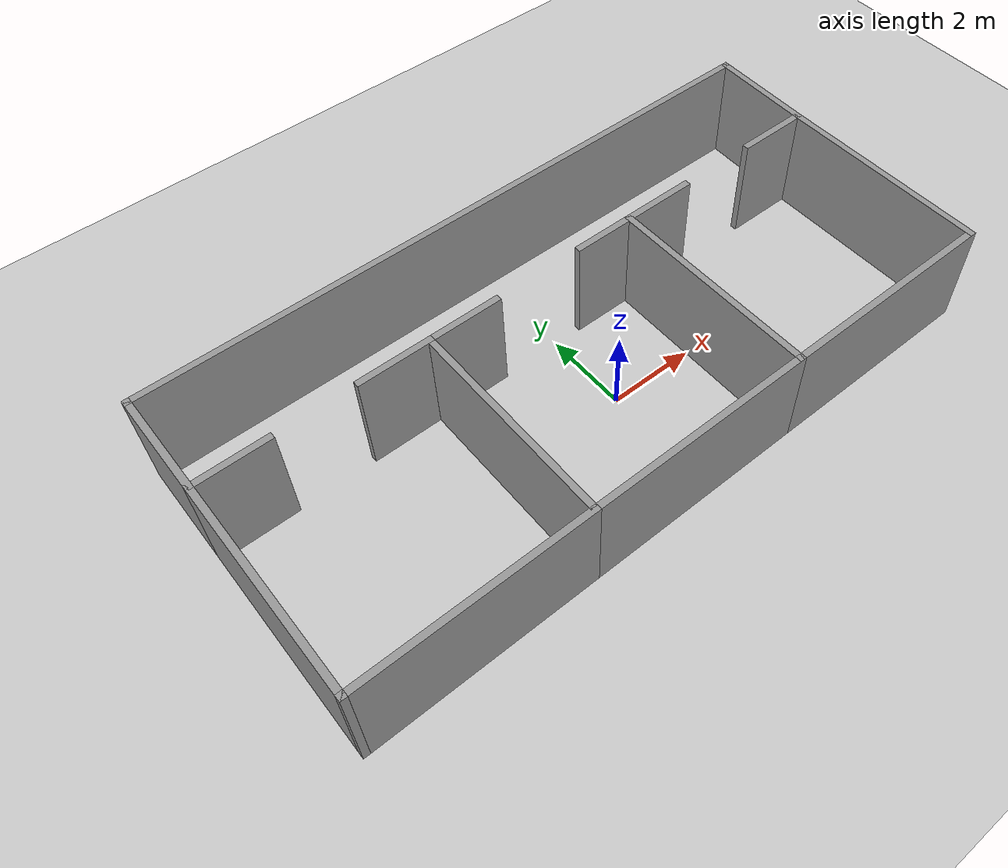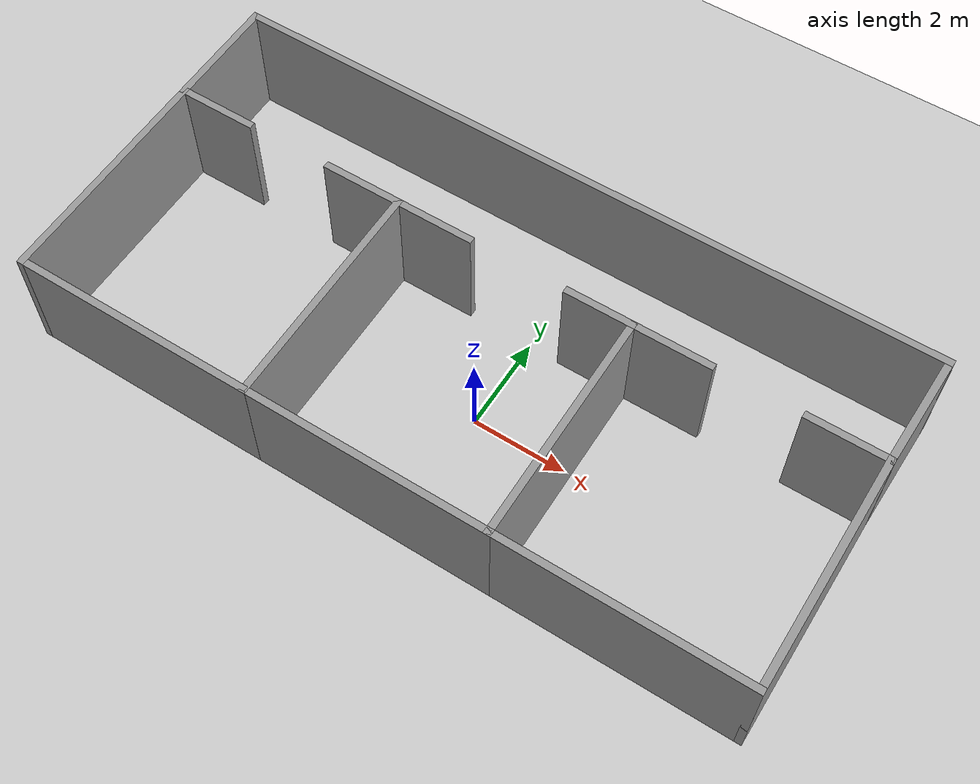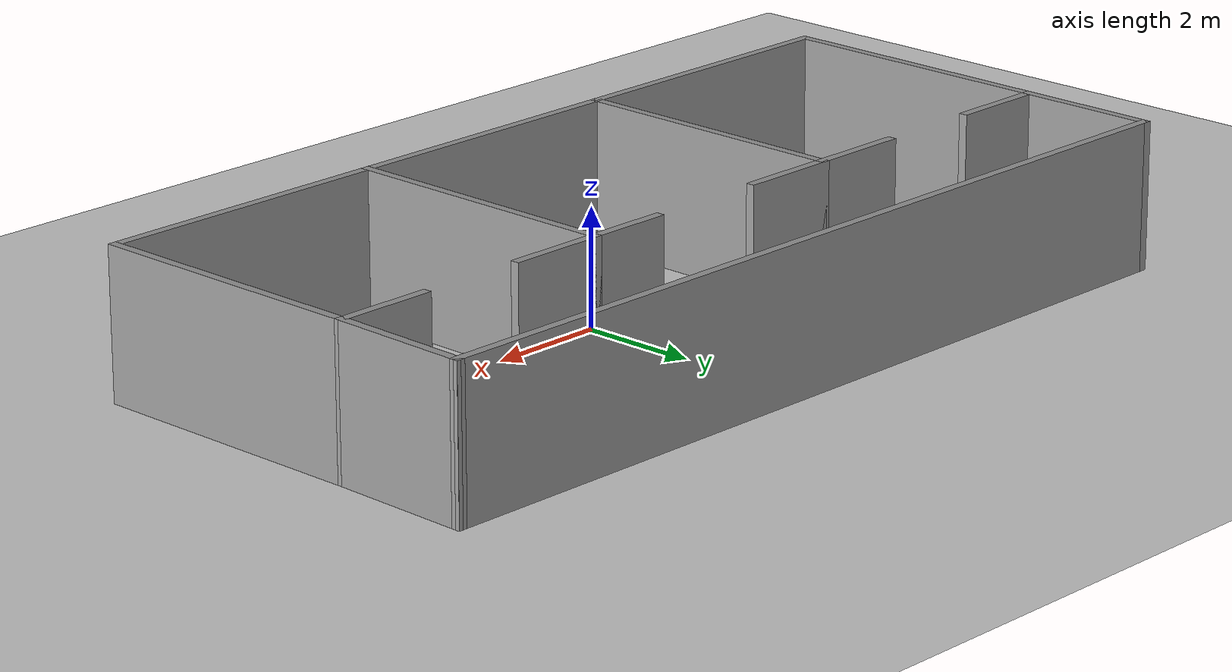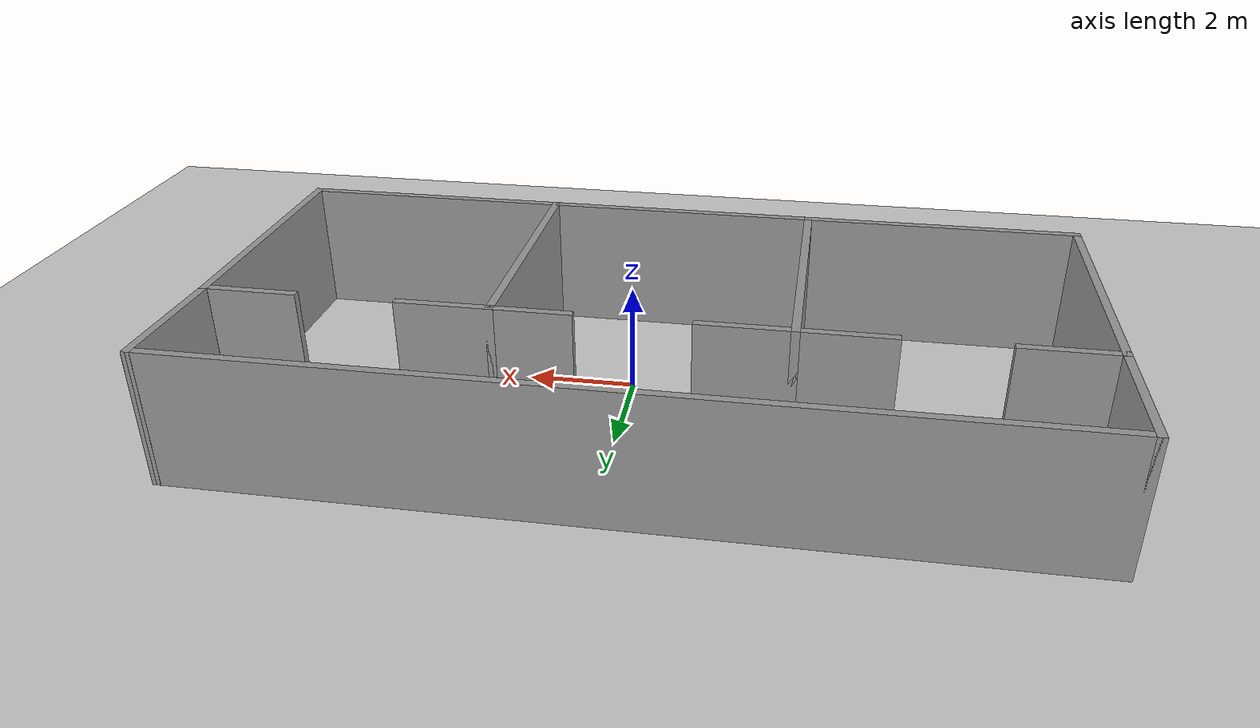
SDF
<?xml version="1.0" ?>
<sdf version="1.4">
  <world name="default">
    <include>
      <uri>model://sun</uri>
    </include>
    <!-- A ground plane -->
    <include>
      <uri>model://ground_plane</uri>
    </include>
    <include>
      <uri>model://asphalt_plane</uri>
    </include>
    <physics name='default_physics' default='0' type='ode'>
      <gravity>0 0 -9.8066</gravity>
      <ode>
        <solver>
          <type>quick</type>
          <iters>10</iters>
          <sor>1.3</sor>
          <use_dynamic_moi_rescaling>0</use_dynamic_moi_rescaling>
        </solver>
        <constraints>
          <cfm>0</cfm>
          <erp>0.2</erp>
          <contact_max_correcting_vel>100</contact_max_correcting_vel>
          <contact_surface_layer>0.001</contact_surface_layer>
        </constraints>
      </ode>
      <max_step_size>0.004</max_step_size>
      <real_time_factor>1</real_time_factor>
      <real_time_update_rate>250</real_time_update_rate>
      <magnetic_field>6.0e-6 2.3e-5 -4.2e-5</magnetic_field>
    </physics>
    <model name='Office'>
      <pose>-0.457432 0.807928 0 0 -0 0</pose>
      <link name='Wall_18'>
        <collision name='Wall_18_Collision'>
          <geometry>
            <box>
              <size>5 0.15 2.5</size>
            </box>
          </geometry>
          <pose>0 0 1.25 0 -0 0</pose>
          <max_contacts>10</max_contacts>
          <surface>
            <contact>
              <ode/>
            </contact>
            <bounce/>
            <friction>
              <torsional>
                <ode/>
              </torsional>
              <ode/>
            </friction>
          </surface>
        </collision>
        <visual name='Wall_18_Visual'>
          <pose>0 0 1.25 0 -0 0</pose>
          <geometry>
            <box>
              <size>5 0.15 2.5</size>
            </box>
          </geometry>
          <material>
            <script>
              <uri>file://media/materials/scripts/gazebo.material</uri>
              <name>Gazebo/Grey</name>
            </script>
            <ambient>1 1 1 1</ambient>
          </material>
          <meta>
            <layer>0</layer>
          </meta>
        </visual>
        <pose>-2.57579 -1.17579 0 0 -0 1.5708</pose>
        <self_collide>0</self_collide>
        <enable_wind>0</enable_wind>
        <kinematic>0</kinematic>
      </link>
      <link name='Wall_20'>
        <collision name='Wall_20_Collision'>
          <geometry>
            <box>
              <size>5 0.15 2.5</size>
            </box>
          </geometry>
          <pose>0 0 1.25 0 -0 0</pose>
          <max_contacts>10</max_contacts>
          <surface>
            <contact>
              <ode/>
            </contact>
            <bounce/>
            <friction>
              <torsional>
                <ode/>
              </torsional>
              <ode/>
            </friction>
          </surface>
        </collision>
        <visual name='Wall_20_Visual'>
          <pose>0 0 1.25 0 -0 0</pose>
          <geometry>
            <box>
              <size>5 0.15 2.5</size>
            </box>
          </geometry>
          <material>
            <script>
              <uri>file://media/materials/scripts/gazebo.material</uri>
              <name>Gazebo/Grey</name>
            </script>
            <ambient>1 1 1 1</ambient>
          </material>
          <meta>
            <layer>0</layer>
          </meta>
        </visual>
        <pose>2.52421 -1.17579 0 0 -0 1.5708</pose>
        <self_collide>0</self_collide>
        <enable_wind>0</enable_wind>
        <kinematic>0</kinematic>
      </link>
      <link name='Wall_21'>
        <collision name='Wall_21_Collision'>
          <geometry>
            <box>
              <size>1.5 0.15 2.5</size>
            </box>
          </geometry>
          <pose>0 0 1.25 0 -0 0</pose>
          <max_contacts>10</max_contacts>
          <surface>
            <contact>
              <ode/>
            </contact>
            <bounce/>
            <friction>
              <torsional>
                <ode/>
              </torsional>
              <ode/>
            </friction>
          </surface>
        </collision>
        <visual name='Wall_21_Visual'>
          <pose>0 0 1.25 0 -0 0</pose>
          <geometry>
            <box>
              <size>1.5 0.15 2.5</size>
            </box>
          </geometry>
          <material>
            <script>
              <uri>file://media/materials/scripts/gazebo.material</uri>
              <name>Gazebo/Grey</name>
            </script>
            <ambient>1 1 1 1</ambient>
          </material>
          <meta>
            <layer>0</layer>
          </meta>
        </visual>
        <pose>1.84921 1.24921 0 0 -0 3.14159</pose>
        <self_collide>0</self_collide>
        <enable_wind>0</enable_wind>
        <kinematic>0</kinematic>
      </link>
      <link name='Wall_23'>
        <collision name='Wall_23_Collision'>
          <geometry>
            <box>
              <size>1.75 0.15 2.5</size>
            </box>
          </geometry>
          <pose>0 0 1.25 0 -0 0</pose>
          <max_contacts>10</max_contacts>
          <surface>
            <contact>
              <ode/>
            </contact>
            <bounce/>
            <friction>
              <torsional>
                <ode/>
              </torsional>
              <ode/>
            </friction>
          </surface>
        </collision>
        <visual name='Wall_23_Visual'>
          <pose>0 0 1.25 0 -0 0</pose>
          <geometry>
            <box>
              <size>1.75 0.15 2.5</size>
            </box>
          </geometry>
          <material>
            <script>
              <uri>file://media/materials/scripts/gazebo.material</uri>
              <name>Gazebo/Grey</name>
            </script>
            <ambient>1 1 1 1</ambient>
          </material>
          <meta>
            <layer>0</layer>
          </meta>
        </visual>
        <pose>-1.77579 1.24921 0 0 -0 0</pose>
        <self_collide>0</self_collide>
        <enable_wind>0</enable_wind>
        <kinematic>0</kinematic>
      </link>
      <link name='Wall_26'>
        <collision name='Wall_26_Collision'>
          <geometry>
            <box>
              <size>5.25 0.15 2.5</size>
            </box>
          </geometry>
          <pose>0 0 1.25 0 -0 0</pose>
          <max_contacts>10</max_contacts>
          <surface>
            <contact>
              <ode/>
            </contact>
            <bounce/>
            <friction>
              <torsional>
                <ode/>
              </torsional>
              <ode/>
            </friction>
          </surface>
        </collision>
        <visual name='Wall_26_Visual'>
          <pose>0 0 1.25 0 -0 0</pose>
          <geometry>
            <box>
              <size>5.25 0.15 2.5</size>
            </box>
          </geometry>
          <material>
            <script>
              <uri>file://media/materials/scripts/gazebo.material</uri>
              <name>Gazebo/Grey</name>
            </script>
            <ambient>1 1 1 1</ambient>
          </material>
          <meta>
            <layer>0</layer>
          </meta>
        </visual>
        <pose>-5.12579 -3.60079 0 0 -0 3.14159</pose>
        <self_collide>0</self_collide>
        <enable_wind>0</enable_wind>
        <kinematic>0</kinematic>
      </link>
      <link name='Wall_27'>
        <collision name='Wall_27_Collision'>
          <geometry>
            <box>
              <size>5 0.15 2.5</size>
            </box>
          </geometry>
          <pose>0 0 1.25 0 -0 0</pose>
          <max_contacts>10</max_contacts>
          <surface>
            <contact>
              <ode/>
            </contact>
            <bounce/>
            <friction>
              <torsional>
                <ode/>
              </torsional>
              <ode/>
            </friction>
          </surface>
        </collision>
        <visual name='Wall_27_Visual'>
          <pose>0 0 1.25 0 -0 0</pose>
          <geometry>
            <box>
              <size>5 0.15 2.5</size>
            </box>
          </geometry>
          <material>
            <script>
              <uri>file://media/materials/scripts/gazebo.material</uri>
              <name>Gazebo/Grey</name>
            </script>
            <ambient>1 1 1 1</ambient>
          </material>
          <meta>
            <layer>0</layer>
          </meta>
        </visual>
        <pose>-7.67579 -1.17579 0 0 -0 1.5708</pose>
        <self_collide>0</self_collide>
        <enable_wind>0</enable_wind>
        <kinematic>0</kinematic>
      </link>
      <link name='Wall_28'>
        <collision name='Wall_28_Collision'>
          <geometry>
            <box>
              <size>1.75 0.15 2.5</size>
            </box>
          </geometry>
          <pose>0 0 1.25 0 -0 0</pose>
          <max_contacts>10</max_contacts>
          <surface>
            <contact>
              <ode/>
            </contact>
            <bounce/>
            <friction>
              <torsional>
                <ode/>
              </torsional>
              <ode/>
            </friction>
          </surface>
        </collision>
        <visual name='Wall_28_Visual'>
          <pose>0 0 1.25 0 -0 0</pose>
          <geometry>
            <box>
              <size>1.75 0.15 2.5</size>
            </box>
          </geometry>
          <material>
            <script>
              <uri>file://media/materials/scripts/gazebo.material</uri>
              <name>Gazebo/Grey</name>
            </script>
            <ambient>1 1 1 1</ambient>
          </material>
          <meta>
            <layer>0</layer>
          </meta>
        </visual>
        <pose>-6.87579 1.24921 0 0 -0 0</pose>
        <self_collide>0</self_collide>
        <enable_wind>0</enable_wind>
        <kinematic>0</kinematic>
      </link>
      <link name='Wall_31'>
        <collision name='Wall_31_Collision'>
          <geometry>
            <box>
              <size>1.75 0.15 2.5</size>
            </box>
          </geometry>
          <pose>0 0 1.25 0 -0 0</pose>
          <max_contacts>10</max_contacts>
          <surface>
            <contact>
              <ode/>
            </contact>
            <bounce/>
            <friction>
              <torsional>
                <ode/>
              </torsional>
              <ode/>
            </friction>
          </surface>
        </collision>
        <visual name='Wall_31_Visual'>
          <pose>0 0 1.25 0 -0 0</pose>
          <geometry>
            <box>
              <size>1.75 0.15 2.5</size>
            </box>
          </geometry>
          <material>
            <script>
              <uri>file://media/materials/scripts/gazebo.material</uri>
              <name>Gazebo/Grey</name>
            </script>
            <ambient>1 1 1 1</ambient>
          </material>
          <meta>
            <layer>0</layer>
          </meta>
        </visual>
        <pose>-3.37579 1.24921 0 0 -0 3.14159</pose>
        <self_collide>0</self_collide>
        <enable_wind>0</enable_wind>
        <kinematic>0</kinematic>
      </link>
      <link name='Wall_33'>
        <collision name='Wall_33_Collision'>
          <geometry>
            <box>
              <size>5.25 0.15 2.5</size>
            </box>
          </geometry>
          <pose>0 0 1.25 0 -0 0</pose>
          <max_contacts>10</max_contacts>
          <surface>
            <contact>
              <ode/>
            </contact>
            <bounce/>
            <friction>
              <torsional>
                <ode/>
              </torsional>
              <ode/>
            </friction>
          </surface>
        </collision>
        <visual name='Wall_33_Visual'>
          <pose>0 0 1.25 0 -0 0</pose>
          <geometry>
            <box>
              <size>5.25 0.15 2.5</size>
            </box>
          </geometry>
          <material>
            <script>
              <uri>file://media/materials/scripts/gazebo.material</uri>
              <name>Gazebo/Grey</name>
            </script>
            <ambient>1 1 1 1</ambient>
          </material>
          <meta>
            <layer>0</layer>
          </meta>
        </visual>
        <pose>5.07421 -3.60079 0 0 -0 0</pose>
        <self_collide>0</self_collide>
        <enable_wind>0</enable_wind>
        <kinematic>0</kinematic>
      </link>
      <link name='Wall_34'>
        <collision name='Wall_34_Collision'>
          <geometry>
            <box>
              <size>5 0.15 2.5</size>
            </box>
          </geometry>
          <pose>0 0 1.25 0 -0 0</pose>
          <max_contacts>10</max_contacts>
          <surface>
            <contact>
              <ode/>
            </contact>
            <bounce/>
            <friction>
              <torsional>
                <ode/>
              </torsional>
              <ode/>
            </friction>
          </surface>
        </collision>
        <visual name='Wall_34_Visual'>
          <pose>0 0 1.25 0 -0 0</pose>
          <geometry>
            <box>
              <size>5 0.15 2.5</size>
            </box>
          </geometry>
          <material>
            <script>
              <uri>file://media/materials/scripts/gazebo.material</uri>
              <name>Gazebo/Grey</name>
            </script>
            <ambient>1 1 1 1</ambient>
          </material>
          <meta>
            <layer>0</layer>
          </meta>
        </visual>
        <pose>7.62421 -1.17579 0 0 -0 1.5708</pose>
        <self_collide>0</self_collide>
        <enable_wind>0</enable_wind>
        <kinematic>0</kinematic>
      </link>
      <link name='Wall_35'>
        <collision name='Wall_35_Collision'>
          <geometry>
            <box>
              <size>1.75 0.15 2.5</size>
            </box>
          </geometry>
          <pose>0 0 1.25 0 -0 0</pose>
          <max_contacts>10</max_contacts>
          <surface>
            <contact>
              <ode/>
            </contact>
            <bounce/>
            <friction>
              <torsional>
                <ode/>
              </torsional>
              <ode/>
            </friction>
          </surface>
        </collision>
        <visual name='Wall_35_Visual'>
          <pose>0 0 1.25 0 -0 0</pose>
          <geometry>
            <box>
              <size>1.75 0.15 2.5</size>
            </box>
          </geometry>
          <material>
            <script>
              <uri>file://media/materials/scripts/gazebo.material</uri>
              <name>Gazebo/Grey</name>
            </script>
            <ambient>1 1 1 1</ambient>
          </material>
          <meta>
            <layer>0</layer>
          </meta>
        </visual>
        <pose>6.82421 1.24921 0 0 -0 3.14159</pose>
        <self_collide>0</self_collide>
        <enable_wind>0</enable_wind>
        <kinematic>0</kinematic>
      </link>
      <link name='Wall_37'>
        <collision name='Wall_37_Collision'>
          <geometry>
            <box>
              <size>1.75 0.15 2.5</size>
            </box>
          </geometry>
          <pose>0 0 1.25 0 -0 0</pose>
          <max_contacts>10</max_contacts>
          <surface>
            <contact>
              <ode/>
            </contact>
            <bounce/>
            <friction>
              <torsional>
                <ode/>
              </torsional>
              <ode/>
            </friction>
          </surface>
        </collision>
        <visual name='Wall_37_Visual'>
          <pose>0 0 1.25 0 -0 0</pose>
          <geometry>
            <box>
              <size>1.75 0.15 2.5</size>
            </box>
          </geometry>
          <material>
            <script>
              <uri>file://media/materials/scripts/gazebo.material</uri>
              <name>Gazebo/Grey</name>
            </script>
            <ambient>1 1 1 1</ambient>
          </material>
          <meta>
            <layer>0</layer>
          </meta>
        </visual>
        <pose>3.32421 1.24921 0 0 -0 0</pose>
        <self_collide>0</self_collide>
        <enable_wind>0</enable_wind>
        <kinematic>0</kinematic>
      </link>
      <link name='Wall_39'>
        <collision name='Wall_39_Collision'>
          <geometry>
            <box>
              <size>2.5 0.15 2.5</size>
            </box>
          </geometry>
          <pose>0 0 1.25 0 -0 0</pose>
          <max_contacts>10</max_contacts>
          <surface>
            <contact>
              <ode/>
            </contact>
            <bounce/>
            <friction>
              <torsional>
                <ode/>
              </torsional>
              <ode/>
            </friction>
          </surface>
        </collision>
        <visual name='Wall_39_Visual'>
          <pose>0 0 1.25 0 -0 0</pose>
          <geometry>
            <box>
              <size>2.5 0.15 2.5</size>
            </box>
          </geometry>
          <material>
            <script>
              <uri>file://media/materials/scripts/gazebo.material</uri>
              <name>Gazebo/Grey</name>
            </script>
            <ambient>1 1 1 1</ambient>
          </material>
          <meta>
            <layer>0</layer>
          </meta>
        </visual>
        <pose>-7.67579 2.42421 0 0 -0 1.5708</pose>
        <self_collide>0</self_collide>
        <enable_wind>0</enable_wind>
        <kinematic>0</kinematic>
      </link>
      <link name='Wall_40'>
        <collision name='Wall_40_Collision'>
          <geometry>
            <box>
              <size>15.5 0.15 2.5</size>
            </box>
          </geometry>
          <pose>0 0 1.25 0 -0 0</pose>
          <max_contacts>10</max_contacts>
          <surface>
            <contact>
              <ode/>
            </contact>
            <bounce/>
            <friction>
              <torsional>
                <ode/>
              </torsional>
              <ode/>
            </friction>
          </surface>
        </collision>
        <visual name='Wall_40_Visual'>
          <pose>0 0 1.25 0 -0 0</pose>
          <geometry>
            <box>
              <size>15.5 0.15 2.5</size>
            </box>
          </geometry>
          <material>
            <script>
              <uri>file://media/materials/scripts/gazebo.material</uri>
              <name>Gazebo/Grey</name>
            </script>
            <ambient>1 1 1 1</ambient>
          </material>
          <meta>
            <layer>0</layer>
          </meta>
        </visual>
        <pose>-0.000789 3.59921 0 0 -0 0</pose>
        <self_collide>0</self_collide>
        <enable_wind>0</enable_wind>
        <kinematic>0</kinematic>
      </link>
      <link name='Wall_41'>
        <collision name='Wall_41_Collision'>
          <geometry>
            <box>
              <size>2.50053 0.15 2.5</size>
            </box>
          </geometry>
          <pose>0 0 1.25 0 -0 0</pose>
          <max_contacts>10</max_contacts>
          <surface>
            <contact>
              <ode/>
            </contact>
            <bounce/>
            <friction>
              <torsional>
                <ode/>
              </torsional>
              <ode/>
            </friction>
          </surface>
        </collision>
        <visual name='Wall_41_Visual'>
          <pose>0 0 1.25 0 -0 0</pose>
          <geometry>
            <box>
              <size>2.50053 0.15 2.5</size>
            </box>
          </geometry>
          <material>
            <script>
              <uri>file://media/materials/scripts/gazebo.material</uri>
              <name>Gazebo/Grey</name>
            </script>
            <ambient>1 1 1 1</ambient>
          </material>
          <meta>
            <layer>0</layer>
          </meta>
        </visual>
        <pose>7.64921 2.42421 0 0 -0 -1.59207</pose>
        <self_collide>0</self_collide>
        <enable_wind>0</enable_wind>
        <kinematic>0</kinematic>
      </link>
      <link name='Wall_6'>
        <collision name='Wall_6_Collision'>
          <geometry>
            <box>
              <size>5.25 0.15 2.5</size>
            </box>
          </geometry>
          <pose>0 0 1.25 0 -0 0</pose>
          <max_contacts>10</max_contacts>
          <surface>
            <contact>
              <ode/>
            </contact>
            <bounce/>
            <friction>
              <torsional>
                <ode/>
              </torsional>
              <ode/>
            </friction>
          </surface>
        </collision>
        <visual name='Wall_6_Visual'>
          <pose>0 0 1.25 0 -0 0</pose>
          <geometry>
            <box>
              <size>5.25 0.15 2.5</size>
            </box>
          </geometry>
          <material>
            <script>
              <uri>file://media/materials/scripts/gazebo.material</uri>
              <name>Gazebo/Grey</name>
            </script>
            <ambient>1 1 1 1</ambient>
          </material>
          <meta>
            <layer>0</layer>
          </meta>
        </visual>
        <pose>-0.025789 -3.60079 0 0 -0 3.14159</pose>
        <self_collide>0</self_collide>
        <enable_wind>0</enable_wind>
        <kinematic>0</kinematic>
      </link>
      <static>1</static>
    </model>

    <light type="directional" name="my_light">
      <pose>0 0 30 0 0 0</pose>
      <diffuse>.5 .5 .5 1</diffuse>
      <specular>.1 .1 .1 1</specular>
      <attenuation>
        <range>200</range>
      </attenuation>
      <direction>0 0 -1</direction>
      <cast_shadows>false</cast_shadows>
    </light>
  </world>
</sdf>
